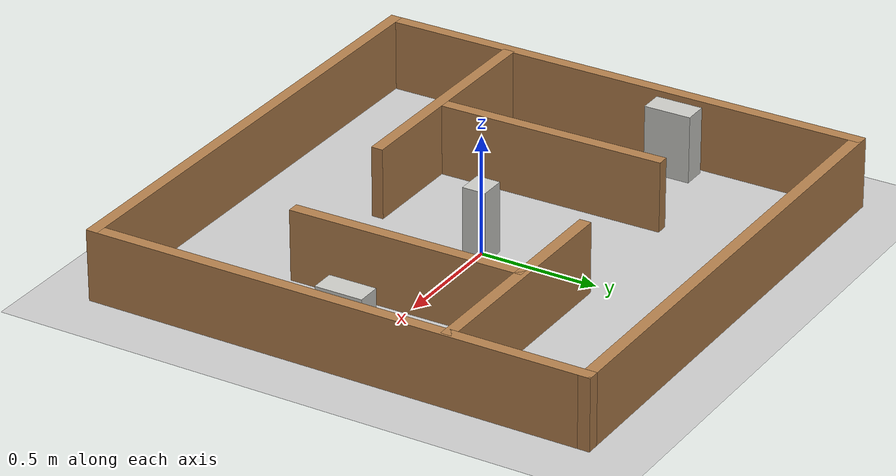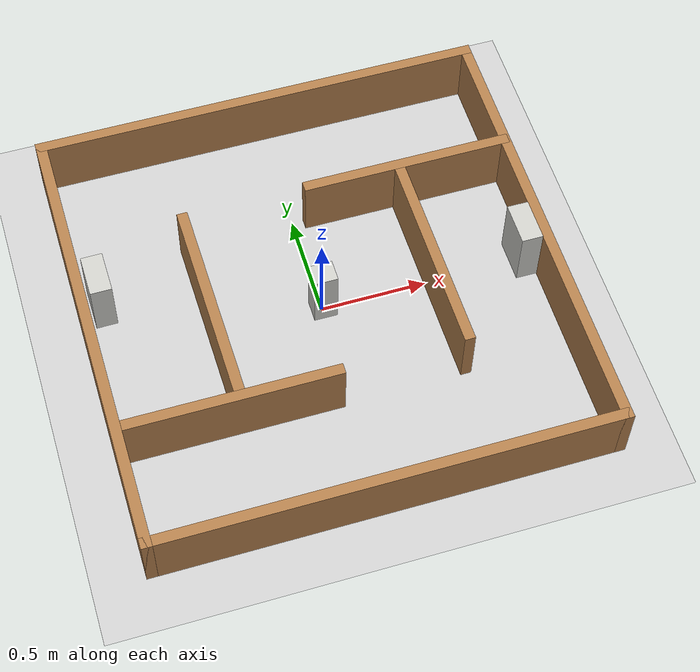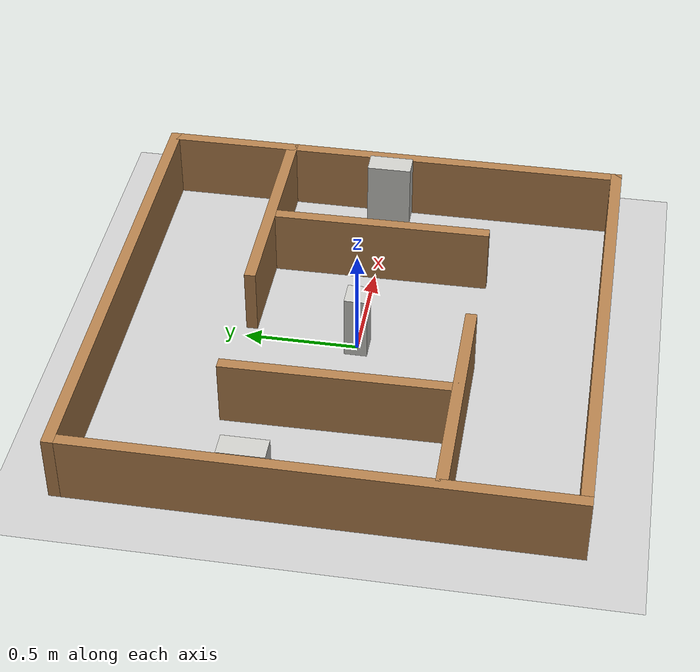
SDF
<sdf version="1.6">
 <world name="default">
  <light name="sun" type="directional">
   <pose>0 0 10 0 -0 0</pose>
   <diffuse>0.8 0.8 0.8 1</diffuse>
   <specular>0.2 0.2 0.2 1</specular>
   <attenuation>
    <range>1000</range>
    <constant>0.9</constant>
    <linear>0.01</linear>
    <quadratic>0.001</quadratic>
   </attenuation>
   <direction>-0.5 0.1 -0.9</direction>
  </light>
  <model name="ground_plane">
   <static>1</static>
   <link name="link">
    <collision name="collision">
     <geometry><plane><normal>0 0 1</normal><size>100 100</size></plane></geometry>
     <surface>
      <contact><collide_bitmask>65535</collide_bitmask></contact>
      <friction><ode><mu>100</mu><mu2>50</mu2></ode></friction>
     </surface>
    </collision>
    <visual name="visual">
     <cast_shadows>0</cast_shadows>
     <geometry><plane><normal>0 0 1</normal><size>100 100</size></plane></geometry>
     <material>
      <script><uri>file://media/materials/scripts/gazebo.material</uri><name>Gazebo/Grey</name></script>
     </material>
    </visual>
   </link>
  </model>
  <gravity>0 0 -9.8</gravity>
  <magnetic_field>6e-06 2.3e-05 -4.2e-05</magnetic_field>
  <atmosphere type="adiabatic"/>
  <physics name="default_physics" default="0" type="ode">
   <max_step_size>0.001</max_step_size>
   <real_time_factor>1</real_time_factor>
   <real_time_update_rate>1000</real_time_update_rate>
  </physics>
  <scene><ambient>0.4 0.4 0.4 1</ambient><background>0.7 0.7 0.7 1</background><shadows>1</shadows></scene>
  <audio><device>default</device></audio>
  <spherical_coordinates>
   <surface_model>EARTH_WGS84</surface_model>
   <latitude_deg>0</latitude_deg>
   <longitude_deg>0</longitude_deg>
   <elevation>0</elevation>
   <heading_deg>0</heading_deg>
  </spherical_coordinates>
  <model name="square1">
   <pose>-0.010471 0.001343 0 0 -0 0</pose>
   <link name="Wall_10">
    <collision name="Wall_10_Collision">
     <geometry><box><size>2.15 0.05 0.3</size></box></geometry>
     <pose>0 0 0.15 0 -0 0</pose>
    </collision>
    <visual name="Wall_10_Visual">
     <pose>0 0 0.15 0 -0 0</pose>
     <geometry><box><size>2.15 0.05 0.3</size></box></geometry>
     <material>
      <script><uri>file://media/materials/scripts/gazebo.material</uri><name>Gazebo/Wood</name></script>
      <ambient>1 1 1 1</ambient>
     </material>
     <meta><layer>0</layer></meta>
    </visual>
    <pose>-0 1.05 0 0 -0 3.14159</pose>
   </link>
   <link name="Wall_11">
    <collision name="Wall_11_Collision">
     <geometry><box><size>2.15 0.05 0.3</size></box></geometry>
     <pose>0 0 0.15 0 -0 0</pose>
    </collision>
    <visual name="Wall_11_Visual">
     <pose>0 0 0.15 0 -0 0</pose>
     <geometry><box><size>2.15 0.05 0.3</size></box></geometry>
     <material>
      <script><uri>file://media/materials/scripts/gazebo.material</uri><name>Gazebo/Wood</name></script>
      <ambient>1 1 1 1</ambient>
     </material>
     <meta><layer>0</layer></meta>
    </visual>
    <pose>-1.05 0 0 0 -0 -1.5708</pose>
   </link>
   <link name="Wall_12">
    <collision name="Wall_12_Collision">
     <geometry><box><size>2.15 0.05 0.3</size></box></geometry>
     <pose>0 0 0.15 0 -0 0</pose>
    </collision>
    <visual name="Wall_12_Visual">
     <pose>0 0 0.15 0 -0 0</pose>
     <geometry><box><size>2.15 0.05 0.3</size></box></geometry>
     <material>
      <script><uri>file://media/materials/scripts/gazebo.material</uri><name>Gazebo/Wood</name></script>
      <ambient>1 1 1 1</ambient>
     </material>
     <meta><layer>0</layer></meta>
    </visual>
    <pose>-0 -1.05 0 0 -0 0</pose>
   </link>
   <link name="Wall_13">
    <collision name="Wall_13_Collision">
     <geometry><box><size>2.15 0.05 0.3</size></box></geometry>
     <pose>0 0 0.15 0 -0 0</pose>
    </collision>
    <visual name="Wall_13_Visual">
     <pose>0 0 0.15 0 -0 0</pose>
     <geometry><box><size>2.15 0.05 0.3</size></box></geometry>
     <material>
      <script><uri>file://media/materials/scripts/gazebo.material</uri><name>Gazebo/Wood</name></script>
      <ambient>1 1 1 1</ambient>
     </material>
     <meta><layer>0</layer></meta>
    </visual>
    <pose>1.05 0 0 0 -0 1.5708</pose>
   </link>
   <static>1</static>
  </model>
  <model name="wall1m">
   <pose>-0.546696 -0.496217 0 0 -0 0</pose>
   <link name="Wall_5">
    <collision name="Wall_5_Collision">
     <geometry><box><size>1 0.05 0.3</size></box></geometry>
     <pose>0 0 0.15 0 -0 0</pose>
    </collision>
    <visual name="Wall_5_Visual">
     <pose>0 0 0.15 0 -0 0</pose>
     <geometry><box><size>1 0.05 0.3</size></box></geometry>
     <material>
      <script><uri>file://media/materials/scripts/gazebo.material</uri><name>Gazebo/Wood</name></script>
      <ambient>1 1 1 1</ambient>
     </material>
     <meta><layer>0</layer></meta>
    </visual>
    <pose>-0 0 0 0 -0 3.14159</pose>
   </link>
   <static>1</static>
  </model>
  <model name="wall1m_0">
   <pose>0.555259 0.482674 0 0 -0 0</pose>
   <link name="Wall_5">
    <collision name="Wall_5_Collision">
     <geometry><box><size>1 0.05 0.3</size></box></geometry>
     <pose>0 0 0.15 0 -0 0</pose>
    </collision>
    <visual name="Wall_5_Visual">
     <pose>0 0 0.15 0 -0 0</pose>
     <geometry><box><size>1 0.05 0.3</size></box></geometry>
     <material>
      <script><uri>file://media/materials/scripts/gazebo.material</uri><name>Gazebo/Wood</name></script>
      <ambient>1 1 1 1</ambient>
     </material>
     <meta><layer>0</layer></meta>
    </visual>
    <pose>-0 0 0 0 -0 3.14159</pose>
   </link>
   <static>1</static>
  </model>
  <model name="wall1m_1">
   <pose>-0.515196 -0.003626 0 0 -0 1.58168</pose>
   <link name="Wall_5">
    <collision name="Wall_5_Collision">
     <geometry><box><size>1 0.05 0.3</size></box></geometry>
     <pose>0 0 0.15 0 -0 0</pose>
    </collision>
    <visual name="Wall_5_Visual">
     <pose>0 0 0.15 0 -0 0</pose>
     <geometry><box><size>1 0.05 0.3</size></box></geometry>
     <material>
      <script><uri>file://media/materials/scripts/gazebo.material</uri><name>Gazebo/Wood</name></script>
      <ambient>1 1 1 1</ambient>
     </material>
     <meta><layer>0</layer></meta>
    </visual>
    <pose>-0 0 0 0 -0 3.14159</pose>
   </link>
   <static>1</static>
  </model>
  <model name="wall1m_2">
   <pose>0.518108 -0.011952 0 0 -0 1.57905</pose>
   <link name="Wall_5">
    <collision name="Wall_5_Collision">
     <geometry><box><size>1 0.05 0.3</size></box></geometry>
     <pose>0 0 0.15 0 -0 0</pose>
    </collision>
    <visual name="Wall_5_Visual">
     <pose>0 0 0.15 0 -0 0</pose>
     <geometry><box><size>1 0.05 0.3</size></box></geometry>
     <material>
      <script><uri>file://media/materials/scripts/gazebo.material</uri><name>Gazebo/Wood</name></script>
      <ambient>1 1 1 1</ambient>
     </material>
     <meta><layer>0</layer></meta>
    </visual>
    <pose>-0 0 0 0 -0 3.14159</pose>
   </link>
   <static>1</static>
  </model>
  <model name="column">
   <pose>0.00543 0.000911 0 0 -0 0</pose>
   <link name="Wall_15">
    <collision name="Wall_15_Collision">
     <geometry><box><size>0.11 0.1 0.3</size></box></geometry>
     <pose>0 0 0.15 0 -0 0</pose>
    </collision>
    <visual name="Wall_15_Visual">
     <pose>0 0 0.15 0 -0 0</pose>
     <geometry><box><size>0.11 0.1 0.3</size></box></geometry>
     <material>
      <script><uri>file://media/materials/scripts/gazebo.material</uri><name>Gazebo/CeilingTiled</name></script>
      <ambient>1 1 1 1</ambient>
     </material>
     <meta><layer>0</layer></meta>
    </visual>
    <pose>0 0 0 0 -0 3.14159</pose>
   </link>
   <static>1</static>
  </model>
  <model name="box">
   <pose>-0.967212 0.296005 -0.015958 0 -0 1.57584</pose>
   <link name="Wall_8">
    <collision name="Wall_8_Collision">
     <geometry><box><size>0.2 0.1 0.3</size></box></geometry>
     <pose>0 0 0.15 0 -0 0</pose>
    </collision>
    <visual name="Wall_8_Visual">
     <pose>0 0 0.15 0 -0 0</pose>
     <geometry><box><size>0.2 0.1 0.3</size></box></geometry>
     <material>
      <script><uri>file://media/materials/scripts/gazebo.material</uri><name>Gazebo/CeilingTiled</name></script>
      <ambient>1 1 1 1</ambient>
     </material>
     <meta><layer>0</layer></meta>
    </visual>
   </link>
   <static>1</static>
  </model>
  <model name="box_0">
   <pose>0.962494 0.000201 0.012005 0 0 -1.56795</pose>
   <link name="Wall_8">
    <collision name="Wall_8_Collision">
     <geometry><box><size>0.2 0.1 0.3</size></box></geometry>
     <pose>0 0 0.15 0 -0 0</pose>
    </collision>
    <visual name="Wall_8_Visual">
     <pose>0 0 0.15 0 -0 0</pose>
     <geometry><box><size>0.2 0.1 0.3</size></box></geometry>
     <material>
      <script><uri>file://media/materials/scripts/gazebo.material</uri><name>Gazebo/CeilingTiled</name></script>
      <ambient>1 1 1 1</ambient>
     </material>
     <meta><layer>0</layer></meta>
    </visual>
   </link>
   <static>1</static>
  </model>
 </world>
</sdf>
